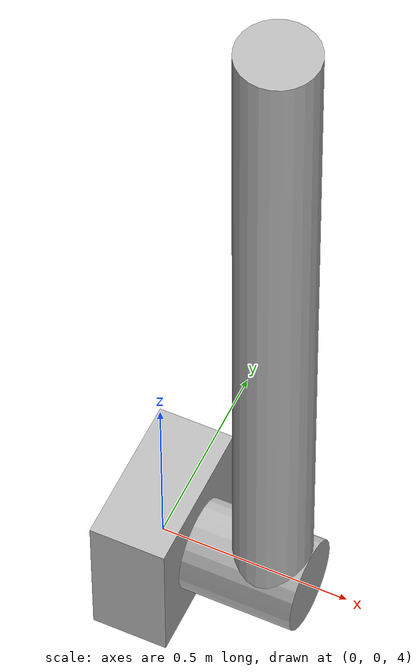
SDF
<sdf version="1.12">
  <world name="pendulum_world">

    <!-- Physics settings -->
    <physics name="default_physics" type="ode">
      <max_step_size>0.001</max_step_size>
      <real_time_update_rate>1000</real_time_update_rate>
    </physics>

    <!-- Lighting and Ground -->
    <include>
      <uri>
      https://fuel.gazebosim.org/1.0/OpenRobotics/models/Sun
      </uri>
    </include>
    <include>
      <uri>
        https://fuel.gazebosim.org/1.0/OpenRobotics/models/Ground Plane
      </uri>
    </include>

    <!-- Spawn your pendulum model -->
    <include>
      <uri>model://pendulum</uri>
      <pose>0 0 4.0 0 0 0</pose>
    </include>

  </world>
</sdf>

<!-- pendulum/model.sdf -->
<sdf version="1.12">
  <model name="pendulum">
    <!-- Base -->
    <link name="slider">
      <pose>0.0 0 0 0 0 0</pose>
      <inertial>
        <mass>1.0</mass>
        <pose>0 0 0 0 0 0</pose>
      </inertial>
      <visual name="vis_slider">
        <geometry>
          <box>
            <size>0.2 0.4 0.4</size>
          </box>
        </geometry>
      </visual>
    </link>

    <!-- Link 1 -->
    <link name="link1">
      <pose degrees="true">0.3 0 0 0.0 0 0</pose>
      <inertial>
        <mass>1.0</mass>
        <pose>0 0 1.0 0 0 0</pose>
      </inertial>
      <visual name="vis_link">
        <pose>0 0 1.0 0 0 0</pose>
        <geometry>
          <cylinder>
            <radius>0.1</radius>
            <length>2.0</length>
          </cylinder>
        </geometry>
      </visual>
      <visual name="vis_upper_joint">
        <pose>-0.1 0 0 0 1.5708 0</pose>
        <geometry>
          <cylinder>
            <radius>0.12</radius>
            <length>0.4</length>
          </cylinder>
        </geometry>
      </visual>
    </link>
    <!-- Link 2 -->

    <!-- Joint 0: world to slider -->
    <joint name="world_to_slider" type="prismatic">
      <parent>world</parent>
      <child>slider</child>
      <pose>0 0 0 0 0 0</pose>
      <axis>
        <!-- Move along the Z-axis -->
        <xyz>0 1 0</xyz>
        <limit>
          <lower>-100.0</lower>
          <upper>100.0</upper>
        </limit>
        <dynamics>
         <friction>0.5</friction>
          <damping>0.1</damping>
        </dynamics>
      </axis>
    </joint>
    <!-- Joint 1: slider to link 1 -->
    <joint name="slider_to_l1" type="revolute">
      <pose degrees="true">0 0 0 0 0 0</pose>
      <parent>slider</parent>
      <child>link1</child>
      <axis>
        <xyz>1 0 0</xyz>
        <dynamics>
          <damping>0.0</damping>
        </dynamics>
      </axis>
    </joint>
    <plugin
            filename="gz-sim-joint-state-publisher-system"
            name="gz::sim::systems::JointStatePublisher"
        >
    </plugin>
    <plugin
            filename="gz-sim-apply-joint-force-system"
            name="gz::sim::systems::ApplyJointForce"
        >
      <joint_name>world_to_slider</joint_name>
    </plugin>
  </model>
</sdf>
